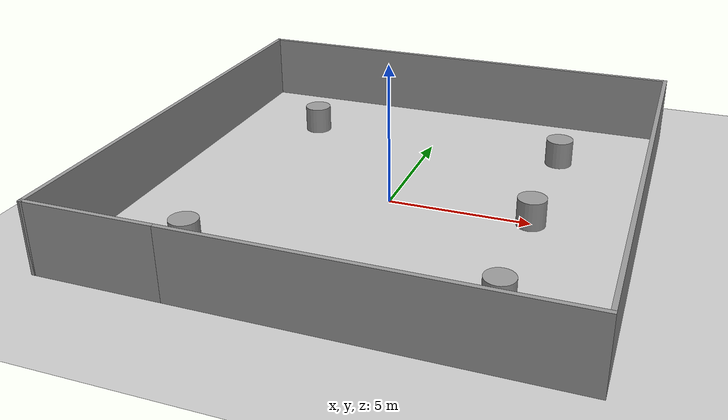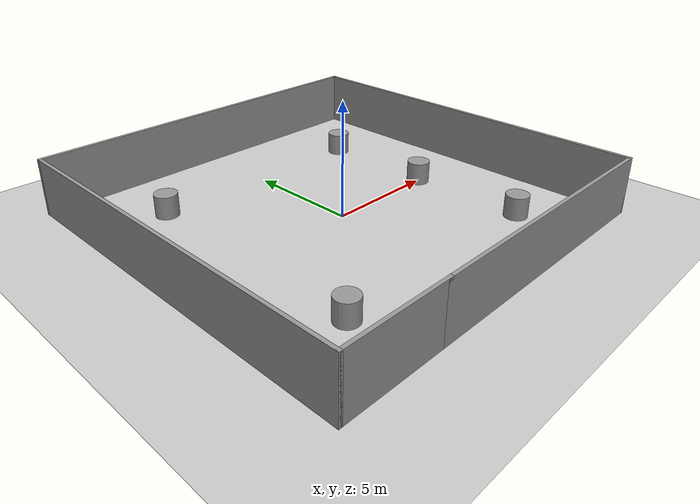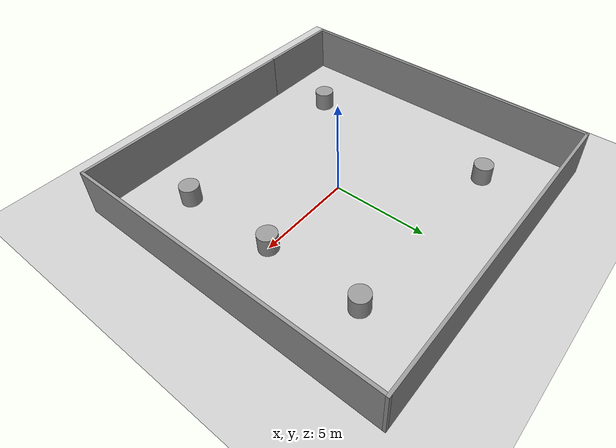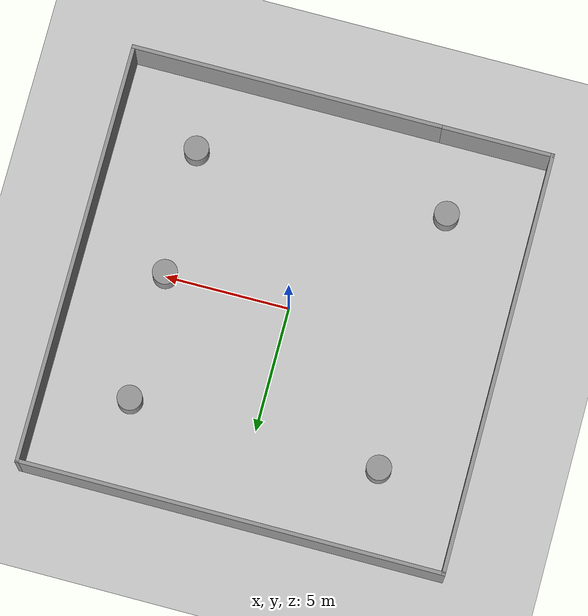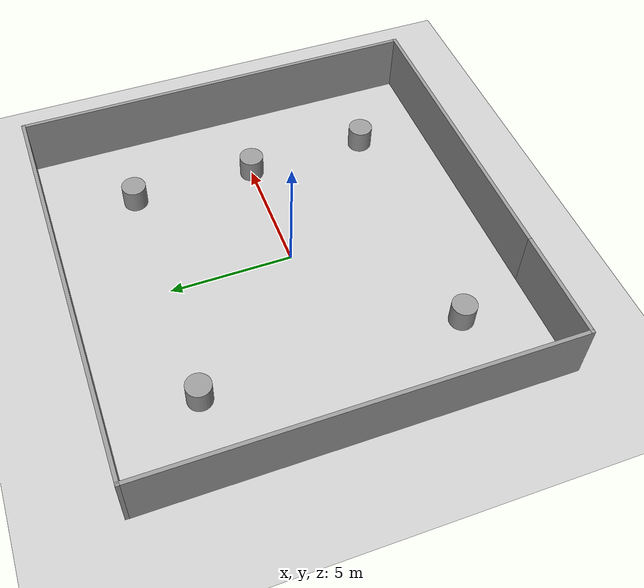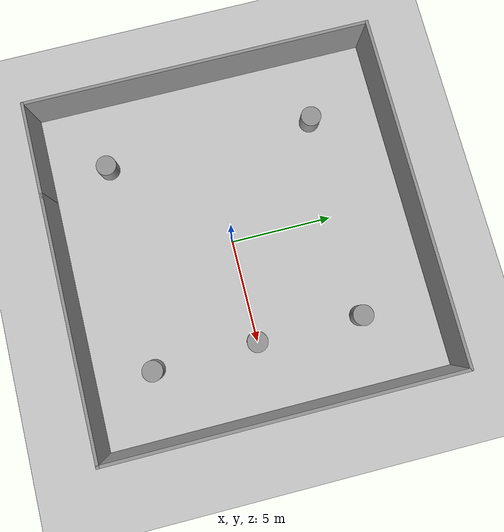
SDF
<sdf version="1.6">
 <world name="default">
  <light name="sun" type="directional">
   <pose>0 0 10 0 -0 0</pose>
   <diffuse>0.8 0.8 0.8 1</diffuse>
   <specular>0.2 0.2 0.2 1</specular>
   <attenuation>
    <range>1000</range>
    <constant>0.9</constant>
    <linear>0.01</linear>
    <quadratic>0.001</quadratic>
   </attenuation>
   <direction>-0.5 0.1 -0.9</direction>
  </light>
  <model name="ground_plane">
   <static>1</static>
   <link name="link">
    <collision name="collision">
     <geometry><plane><normal>0 0 1</normal><size>100 100</size></plane></geometry>
     <surface>
      <contact><collide_bitmask>65535</collide_bitmask></contact>
      <friction><ode><mu>100</mu><mu2>50</mu2></ode></friction>
     </surface>
    </collision>
    <visual name="visual">
     <cast_shadows>0</cast_shadows>
     <geometry><plane><normal>0 0 1</normal><size>100 100</size></plane></geometry>
     <material>
      <script><uri>file://media/materials/scripts/gazebo.material</uri><name>Gazebo/Grey</name></script>
     </material>
    </visual>
   </link>
  </model>
  <gravity>0 0 -9.8</gravity>
  <magnetic_field>6e-06 2.3e-05 -4.2e-05</magnetic_field>
  <atmosphere type="adiabatic"/>
  <physics name="default_physics" default="0" type="ode">
   <max_step_size>0.001</max_step_size>
   <real_time_factor>1</real_time_factor>
   <real_time_update_rate>1000</real_time_update_rate>
  </physics>
  <scene><ambient>0.4 0.4 0.4 1</ambient><background>0.7 0.7 0.7 1</background><shadows>1</shadows></scene>
  <audio><device>default</device></audio>
  <spherical_coordinates>
   <surface_model>EARTH_WGS84</surface_model>
   <latitude_deg>0</latitude_deg>
   <longitude_deg>0</longitude_deg>
   <elevation>0</elevation>
   <heading_deg>0</heading_deg>
  </spherical_coordinates>
  <model name="Untitled">
   <pose>-0.017154 0.373463 0 0 -0 0</pose>
   <link name="Wall_2">
    <collision name="Wall_2_Collision">
     <geometry><box><size>12.5 0.15 2.5</size></box></geometry>
     <pose>0 0 1.25 0 -0 0</pose>
    </collision>
    <visual name="Wall_2_Visual">
     <pose>0 0 1.25 0 -0 0</pose>
     <geometry><box><size>12.5 0.15 2.5</size></box></geometry>
     <material>
      <script><uri>file://media/materials/scripts/gazebo.material</uri><name>Gazebo/Grey</name></script>
      <ambient>1 1 1 1</ambient>
     </material>
     <meta><layer>0</layer></meta>
    </visual>
    <pose>2.25 -8.425 0 0 -0 0</pose>
   </link>
   <link name="Wall_3">
    <collision name="Wall_3_Collision">
     <geometry><box><size>17 0.15 2.5</size></box></geometry>
     <pose>0 0 1.25 0 -0 0</pose>
    </collision>
    <visual name="Wall_3_Visual">
     <pose>0 0 1.25 0 -0 0</pose>
     <geometry><box><size>17 0.15 2.5</size></box></geometry>
     <material>
      <script><uri>file://media/materials/scripts/gazebo.material</uri><name>Gazebo/Grey</name></script>
      <ambient>1 1 1 1</ambient>
     </material>
     <meta><layer>0</layer></meta>
    </visual>
    <pose>8.425 -0 0 0 -0 1.5708</pose>
   </link>
   <link name="Wall_4">
    <collision name="Wall_4_Collision">
     <geometry><box><size>17 0.15 2.5</size></box></geometry>
     <pose>0 0 1.25 0 -0 0</pose>
    </collision>
    <visual name="Wall_4_Visual">
     <pose>0 0 1.25 0 -0 0</pose>
     <geometry><box><size>17 0.15 2.5</size></box></geometry>
     <material>
      <script><uri>file://media/materials/scripts/gazebo.material</uri><name>Gazebo/Grey</name></script>
      <ambient>1 1 1 1</ambient>
     </material>
     <meta><layer>0</layer></meta>
    </visual>
    <pose>-0 8.425 0 0 -0 3.14159</pose>
   </link>
   <link name="Wall_5">
    <collision name="Wall_5_Collision">
     <geometry><box><size>17 0.15 2.5</size></box></geometry>
     <pose>0 0 1.25 0 -0 0</pose>
    </collision>
    <visual name="Wall_5_Visual">
     <pose>0 0 1.25 0 -0 0</pose>
     <geometry><box><size>17 0.15 2.5</size></box></geometry>
     <material>
      <script><uri>file://media/materials/scripts/gazebo.material</uri><name>Gazebo/Grey</name></script>
      <ambient>1 1 1 1</ambient>
     </material>
     <meta><layer>0</layer></meta>
    </visual>
    <pose>-8.425 -0 0 0 -0 -1.5708</pose>
   </link>
   <link name="Wall_6">
    <collision name="Wall_6_Collision">
     <geometry><box><size>4.75 0.15 2.5</size></box></geometry>
     <pose>0 0 1.25 0 -0 0</pose>
    </collision>
    <visual name="Wall_6_Visual">
     <pose>0 0 1.25 0 -0 0</pose>
     <geometry><box><size>4.75 0.15 2.5</size></box></geometry>
     <material>
      <script><uri>file://media/materials/scripts/gazebo.material</uri><name>Gazebo/Grey</name></script>
      <ambient>1 1 1 1</ambient>
     </material>
     <meta><layer>0</layer></meta>
    </visual>
    <pose>-6.125 -8.425 0 0 -0 0</pose>
   </link>
   <static>1</static>
  </model>
  <model name="unit_cylinder">
   <pose>-5.01611 5.28432 0.499997 3e-06 4e-06 -0</pose>
   <link name="link">
    <inertial>
     <mass>1</mass>
     <inertia><ixx>0.145833</ixx><ixy>0</ixy><ixz>0</ixz><iyy>0.145833</iyy><iyz>0</iyz><izz>0.125</izz></inertia>
    </inertial>
    <collision name="collision">
     <geometry><cylinder><radius>0.5</radius><length>1</length></cylinder></geometry>
    </collision>
    <visual name="visual">
     <geometry><cylinder><radius>0.5</radius><length>1</length></cylinder></geometry>
     <material>
      <script><name>Gazebo/Grey</name><uri>file://media/materials/scripts/gazebo.material</uri></script>
     </material>
    </visual>
   </link>
  </model>
  <model name="unit_cylinder_0">
   <pose>5.01294 5.13165 0.499997 3e-06 4e-06 -0</pose>
   <link name="link">
    <inertial>
     <mass>1</mass>
     <inertia><ixx>0.145833</ixx><ixy>0</ixy><ixz>0</ixz><iyy>0.145833</iyy><iyz>0</iyz><izz>0.125</izz></inertia>
    </inertial>
    <collision name="collision">
     <geometry><cylinder><radius>0.5</radius><length>1</length></cylinder></geometry>
    </collision>
    <visual name="visual">
     <geometry><cylinder><radius>0.5</radius><length>1</length></cylinder></geometry>
     <material>
      <script><name>Gazebo/Grey</name><uri>file://media/materials/scripts/gazebo.material</uri></script>
     </material>
    </visual>
   </link>
  </model>
  <model name="unit_cylinder_1">
   <pose>-5.03542 -5.08527 0.499993 -3e-06 -4e-06 -0</pose>
   <link name="link">
    <inertial>
     <mass>1</mass>
     <inertia><ixx>0.145833</ixx><ixy>0</ixy><ixz>0</ixz><iyy>0.145833</iyy><iyz>0</iyz><izz>0.125</izz></inertia>
    </inertial>
    <collision name="collision">
     <geometry><cylinder><radius>0.5</radius><length>1</length></cylinder></geometry>
    </collision>
    <visual name="visual">
     <geometry><cylinder><radius>0.5</radius><length>1</length></cylinder></geometry>
     <material>
      <script><name>Gazebo/Grey</name><uri>file://media/materials/scripts/gazebo.material</uri></script>
     </material>
    </visual>
   </link>
  </model>
  <model name="unit_cylinder_2">
   <pose>5.10299 -5.08545 0.499993 -3e-06 -4e-06 -0</pose>
   <link name="link">
    <inertial>
     <mass>1</mass>
     <inertia><ixx>0.145833</ixx><ixy>0</ixy><ixz>0</ixz><iyy>0.145833</iyy><iyz>0</iyz><izz>0.125</izz></inertia>
    </inertial>
    <collision name="collision">
     <geometry><cylinder><radius>0.5</radius><length>1</length></cylinder></geometry>
    </collision>
    <visual name="visual">
     <geometry><cylinder><radius>0.5</radius><length>1</length></cylinder></geometry>
     <material>
      <script><name>Gazebo/Grey</name><uri>file://media/materials/scripts/gazebo.material</uri></script>
     </material>
    </visual>
   </link>
  </model>
  <model name="unit_cylinder_3">
   <pose>4.99824 -0.011534 0.499997 3e-06 4e-06 -0</pose>
   <link name="link">
    <inertial>
     <mass>1</mass>
     <inertia><ixx>0.145833</ixx><ixy>0</ixy><ixz>0</ixz><iyy>0.145833</iyy><iyz>0</iyz><izz>0.125</izz></inertia>
    </inertial>
    <collision name="collision">
     <geometry><cylinder><radius>0.5</radius><length>1</length></cylinder></geometry>
    </collision>
    <visual name="visual">
     <geometry><cylinder><radius>0.5</radius><length>1</length></cylinder></geometry>
     <material>
      <script><name>Gazebo/Grey</name><uri>file://media/materials/scripts/gazebo.material</uri></script>
     </material>
    </visual>
   </link>
  </model>
 </world>
</sdf>
